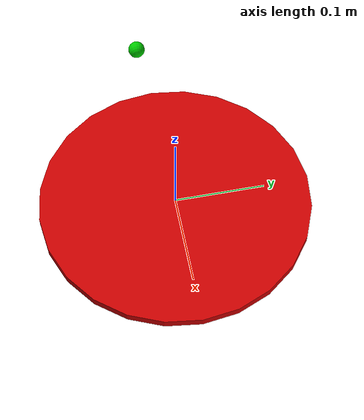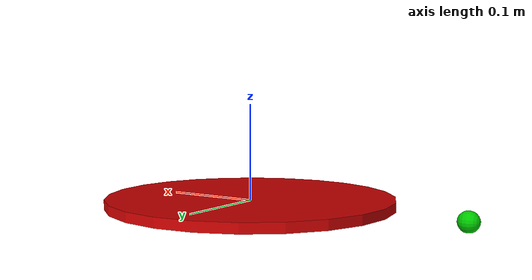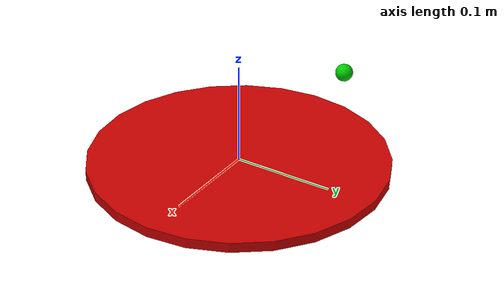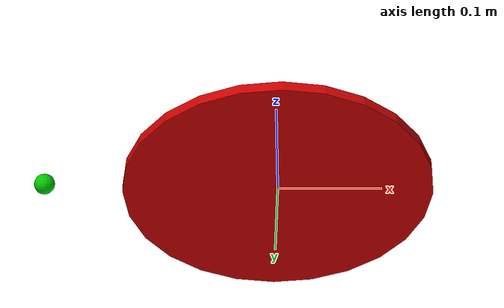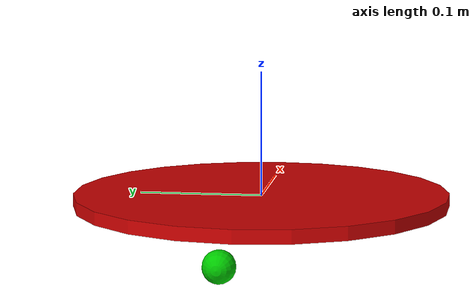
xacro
<?xml version="1.0"?>
<robot xmlns:xacro="http://www.ros.org/wiki/xacro" name="plate">

  <xacro:macro name="plate" params="prefix:=plate radius:=0.15 length:=0.01">

    <link name="${prefix}_link">
      <inertial>
        <origin xyz="0 0 0" rpy="0 0 0"/>
        <mass value="0.2"/>
        <inertia
          ixx="0.0003" ixy="0.0" ixz="0.0"
          iyy="0.0003" iyz="0.0"
          izz="0.0006"/>
      </inertial>

      <!-- Optional collision -->

      <visual name="${prefix}_visual">
        <origin xyz="0 0 0" rpy="0 0 0"/>
        <geometry>
          <cylinder radius="${radius}" length="${length}"/>
        </geometry>
          <material name="Gazebo/Red">
            <color rgba="0.8 0.0 0.0 1.0"/>
          </material>
      </visual>
    </link>

    <link name="${prefix}_grasp_link">
      <inertial>
        <origin xyz="0 0 0" rpy="0 0 0"/>
        <mass value="0.01"/>
        <inertia
          ixx="1e-6" ixy="0.0" ixz="0.0"
          iyy="1e-6" iyz="0.0"
          izz="1e-6"/>
      </inertial>
      <!-- Optional collision -->
      <visual name="${prefix}_grasp_visual">
        <origin xyz="0 0 0" rpy="0 0 0"/>
        <geometry>
          <sphere radius="0.01"/>
        </geometry>
          <material name="Gazebo/Green">
            <color rgba="0.0 0.8 0.0 1.0"/>
          </material>
      </visual>
    </link>

    <joint name="${prefix}_fixed_joint" type="fixed">
      <parent link="${prefix}_link"/>
      <child link="${prefix}_grasp_link"/>
      <origin xyz="-0.225 -0.005 0.0" rpy="0 1.57079632679 0"/>
    </joint>

    <gazebo reference="${prefix}_link">
      <material>Gazebo/Red</material>
      <ambient>0.8 0.2 0.2 1.0</ambient>
      <diffuse>0.8 0.2 0.2 1.0</diffuse>
    </gazebo>

    <gazebo reference="${prefix}_grasp_link">
      <material>Gazebo/Green</material>
      <ambient>0 1 0 1.0</ambient>
      <diffuse>0 1 0 1.0</diffuse>
    </gazebo>

  </xacro:macro>

  <xacro:plate/>

</robot>
